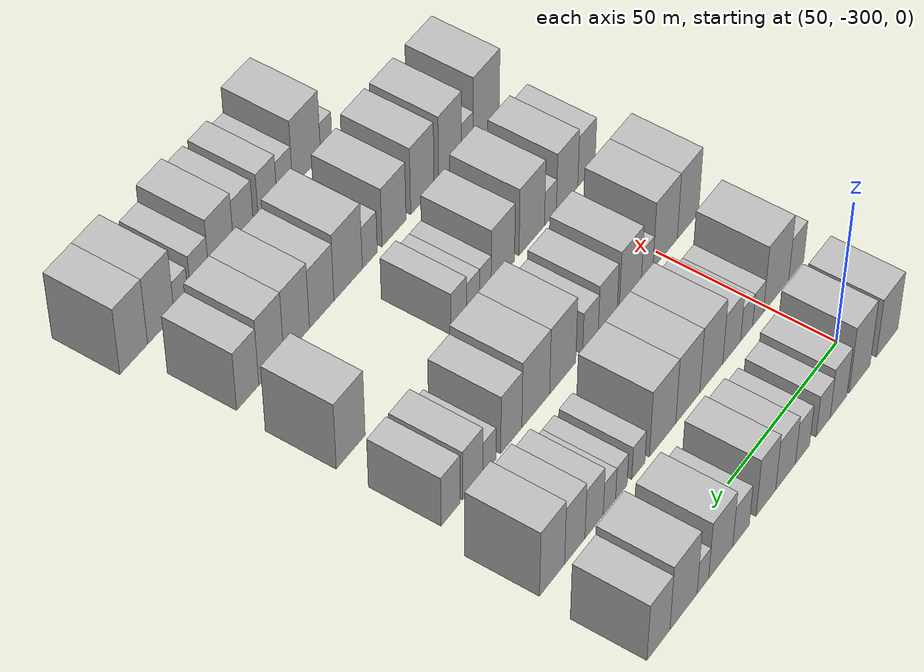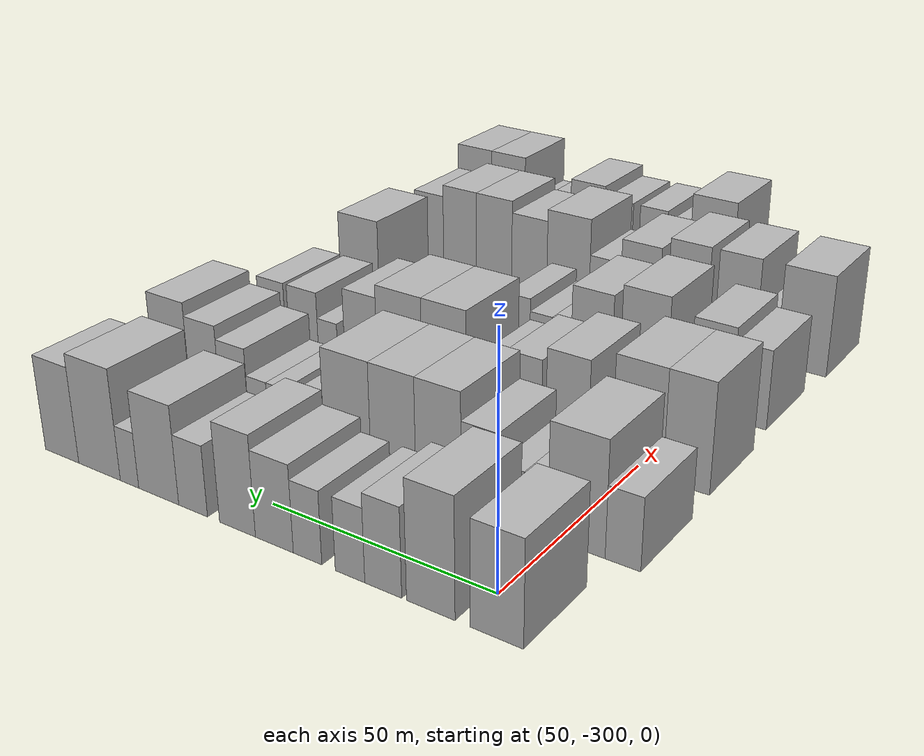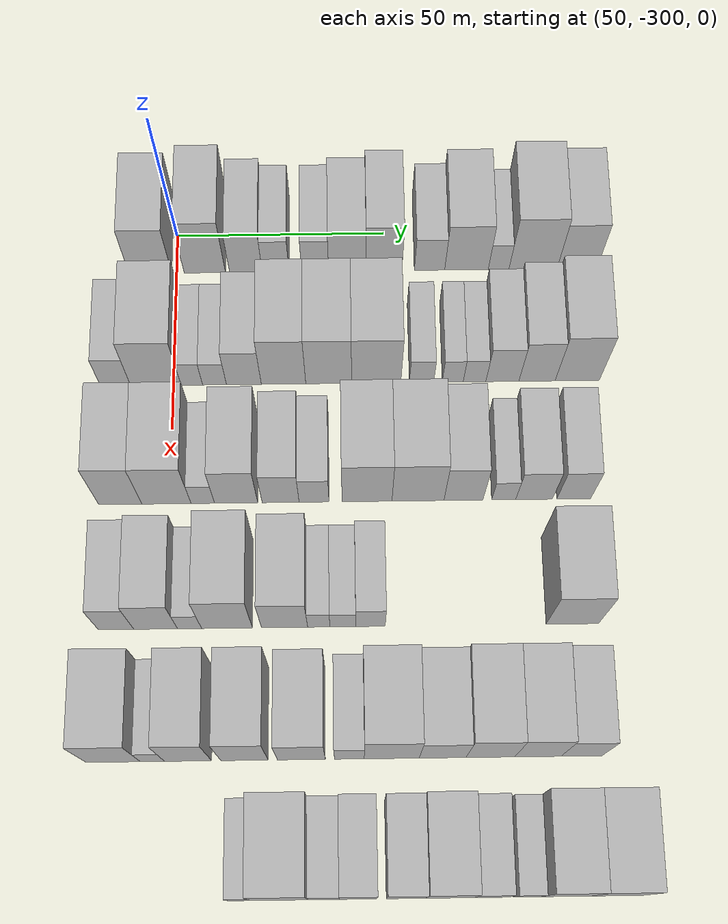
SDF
<sdf version="1.6">
 <world name="default">
  <model name="building_24">
   <static>1</static>
   <pose>50.0000 -306.2270 0 0.000000 0.000000 0.000000</pose>
   <link name="link">
    <pose>0 0 10.50 0 0 0</pose>
    <collision name="collision"><geometry><box><size>20.0000 10.2788 21.0000</size></box></geometry></collision>
    <visual name="visual">
     <cast_shadows>0</cast_shadows>
     <geometry><box><size>20.0000 10.2788 21.0000</size></box></geometry>
     <material>
      <script>
       <uri>model://HANNAS_wall/materials/scripts</uri>
       <uri>model://HANNAS_wall/materials/textures</uri>
       <name>vrc/HANNAS_wall</name>
      </script>
     </material>
    </visual>
   </link>
  </model>
  <model name="building_25">
   <static>1</static>
   <pose>50.0000 -293.1392 0 0.000000 0.000000 0.000000</pose>
   <link name="link">
    <pose>0 0 12.00 0 0 0</pose>
    <collision name="collision"><geometry><box><size>20.0000 9.8967 24.0000</size></box></geometry></collision>
    <visual name="visual">
     <cast_shadows>0</cast_shadows>
     <geometry><box><size>20.0000 9.8967 24.0000</size></box></geometry>
     <material>
      <script>
       <uri>model://HANNAS_wall/materials/scripts</uri>
       <uri>model://HANNAS_wall/materials/textures</uri>
       <name>vrc/HANNAS_wall</name>
      </script>
     </material>
    </visual>
   </link>
  </model>
  <model name="building_26">
   <static>1</static>
   <pose>50.0000 -283.2731 0 0.000000 0.000000 0.000000</pose>
   <link name="link">
    <pose>0 0 9.00 0 0 0</pose>
    <collision name="collision"><geometry><box><size>20.0000 7.8355 18.0000</size></box></geometry></collision>
    <visual name="visual">
     <cast_shadows>0</cast_shadows>
     <geometry><box><size>20.0000 7.8355 18.0000</size></box></geometry>
     <material>
      <script>
       <uri>model://HANNAS_wall/materials/scripts</uri>
       <uri>model://HANNAS_wall/materials/textures</uri>
       <name>vrc/HANNAS_wall</name>
      </script>
     </material>
    </visual>
   </link>
  </model>
  <model name="building_27">
   <static>1</static>
   <pose>50.0000 -276.1281 0 0.000000 0.000000 0.000000</pose>
   <link name="link">
    <pose>0 0 7.50 0 0 0</pose>
    <collision name="collision"><geometry><box><size>20.0000 6.4543 15.0000</size></box></geometry></collision>
    <visual name="visual">
     <cast_shadows>0</cast_shadows>
     <geometry><box><size>20.0000 6.4543 15.0000</size></box></geometry>
     <material>
      <script>
       <uri>model://HANNAS_wall/materials/scripts</uri>
       <uri>model://HANNAS_wall/materials/textures</uri>
       <name>vrc/HANNAS_wall</name>
      </script>
     </material>
    </visual>
   </link>
  </model>
  <model name="building_28">
   <static>1</static>
   <pose>50.0000 -266.6582 0 0.000000 0.000000 0.000000</pose>
   <link name="link">
    <pose>0 0 7.50 0 0 0</pose>
    <collision name="collision"><geometry><box><size>20.0000 6.4856 15.0000</size></box></geometry></collision>
    <visual name="visual">
     <cast_shadows>0</cast_shadows>
     <geometry><box><size>20.0000 6.4856 15.0000</size></box></geometry>
     <material>
      <script>
       <uri>model://HANNAS_wall/materials/scripts</uri>
       <uri>model://HANNAS_wall/materials/textures</uri>
       <name>vrc/HANNAS_wall</name>
      </script>
     </material>
    </visual>
   </link>
  </model>
  <model name="building_29">
   <static>1</static>
   <pose>50.0000 -258.9765 0 0.000000 0.000000 0.000000</pose>
   <link name="link">
    <pose>0 0 9.00 0 0 0</pose>
    <collision name="collision"><geometry><box><size>20.0000 8.8778 18.0000</size></box></geometry></collision>
    <visual name="visual">
     <cast_shadows>0</cast_shadows>
     <geometry><box><size>20.0000 8.8778 18.0000</size></box></geometry>
     <material>
      <script>
       <uri>model://HANNAS_wall/materials/scripts</uri>
       <uri>model://HANNAS_wall/materials/textures</uri>
       <name>vrc/HANNAS_wall</name>
      </script>
     </material>
    </visual>
   </link>
  </model>
  <model name="building_30">
   <static>1</static>
   <pose>50.0000 -250.1749 0 0.000000 0.000000 0.000000</pose>
   <link name="link">
    <pose>0 0 10.50 0 0 0</pose>
    <collision name="collision"><geometry><box><size>20.0000 8.7254 21.0000</size></box></geometry></collision>
    <visual name="visual">
     <cast_shadows>0</cast_shadows>
     <geometry><box><size>20.0000 8.7254 21.0000</size></box></geometry>
     <material>
      <script>
       <uri>model://HANNAS_wall/materials/scripts</uri>
       <uri>model://HANNAS_wall/materials/textures</uri>
       <name>vrc/HANNAS_wall</name>
      </script>
     </material>
    </visual>
   </link>
  </model>
  <model name="building_31">
   <static>1</static>
   <pose>50.0000 -239.1682 0 0.000000 0.000000 0.000000</pose>
   <link name="link">
    <pose>0 0 7.50 0 0 0</pose>
    <collision name="collision"><geometry><box><size>20.0000 7.2879 15.0000</size></box></geometry></collision>
    <visual name="visual">
     <cast_shadows>0</cast_shadows>
     <geometry><box><size>20.0000 7.2879 15.0000</size></box></geometry>
     <material>
      <script>
       <uri>model://HANNAS_wall/materials/scripts</uri>
       <uri>model://HANNAS_wall/materials/textures</uri>
       <name>vrc/HANNAS_wall</name>
      </script>
     </material>
    </visual>
   </link>
  </model>
  <model name="building_32">
   <static>1</static>
   <pose>50.0000 -230.2769 0 0.000000 0.000000 0.000000</pose>
   <link name="link">
    <pose>0 0 10.50 0 0 0</pose>
    <collision name="collision"><geometry><box><size>20.0000 10.4948 21.0000</size></box></geometry></collision>
    <visual name="visual">
     <cast_shadows>0</cast_shadows>
     <geometry><box><size>20.0000 10.4948 21.0000</size></box></geometry>
     <material>
      <script>
       <uri>model://HANNAS_wall/materials/scripts</uri>
       <uri>model://HANNAS_wall/materials/textures</uri>
       <name>vrc/HANNAS_wall</name>
      </script>
     </material>
    </visual>
   </link>
  </model>
  <model name="building_33">
   <static>1</static>
   <pose>50.0000 -222.5440 0 0.000000 0.000000 0.000000</pose>
   <link name="link">
    <pose>0 0 6.00 0 0 0</pose>
    <collision name="collision"><geometry><box><size>20.0000 4.9711 12.0000</size></box></geometry></collision>
    <visual name="visual">
     <cast_shadows>0</cast_shadows>
     <geometry><box><size>20.0000 4.9711 12.0000</size></box></geometry>
     <material>
      <script>
       <uri>model://HANNAS_wall/materials/scripts</uri>
       <uri>model://HANNAS_wall/materials/textures</uri>
       <name>vrc/HANNAS_wall</name>
      </script>
     </material>
    </visual>
   </link>
  </model>
  <model name="building_34">
   <static>1</static>
   <pose>50.0000 -214.2739 0 0.000000 0.000000 0.000000</pose>
   <link name="link">
    <pose>0 0 12.00 0 0 0</pose>
    <collision name="collision"><geometry><box><size>20.0000 11.5692 24.0000</size></box></geometry></collision>
    <visual name="visual">
     <cast_shadows>0</cast_shadows>
     <geometry><box><size>20.0000 11.5692 24.0000</size></box></geometry>
     <material>
      <script>
       <uri>model://HANNAS_wall/materials/scripts</uri>
       <uri>model://HANNAS_wall/materials/textures</uri>
       <name>vrc/HANNAS_wall</name>
      </script>
     </material>
    </visual>
   </link>
  </model>
  <model name="building_35">
   <static>1</static>
   <pose>50.0000 -203.6890 0 0.000000 0.000000 0.000000</pose>
   <link name="link">
    <pose>0 0 10.50 0 0 0</pose>
    <collision name="collision"><geometry><box><size>20.0000 9.6006 21.0000</size></box></geometry></collision>
    <visual name="visual">
     <cast_shadows>0</cast_shadows>
     <geometry><box><size>20.0000 9.6006 21.0000</size></box></geometry>
     <material>
      <script>
       <uri>model://HANNAS_wall/materials/scripts</uri>
       <uri>model://HANNAS_wall/materials/textures</uri>
       <name>vrc/HANNAS_wall</name>
      </script>
     </material>
    </visual>
   </link>
  </model>
  <model name="building_130">
   <static>1</static>
   <pose>79.0000 -313.4329 0 0.000000 0.000000 0.000000</pose>
   <link name="link">
    <pose>0 0 7.50 0 0 0</pose>
    <collision name="collision"><geometry><box><size>20.0000 7.0495 15.0000</size></box></geometry></collision>
    <visual name="visual">
     <cast_shadows>0</cast_shadows>
     <geometry><box><size>20.0000 7.0495 15.0000</size></box></geometry>
     <material>
      <script>
       <uri>model://HANNAS_wall/materials/scripts</uri>
       <uri>model://HANNAS_wall/materials/textures</uri>
       <name>vrc/HANNAS_wall</name>
      </script>
     </material>
    </visual>
   </link>
  </model>
  <model name="building_131">
   <static>1</static>
   <pose>79.0000 -304.0091 0 0.000000 0.000000 0.000000</pose>
   <link name="link">
    <pose>0 0 12.00 0 0 0</pose>
    <collision name="collision"><geometry><box><size>20.0000 11.7979 24.0000</size></box></geometry></collision>
    <visual name="visual">
     <cast_shadows>0</cast_shadows>
     <geometry><box><size>20.0000 11.7979 24.0000</size></box></geometry>
     <material>
      <script>
       <uri>model://HANNAS_wall/materials/scripts</uri>
       <uri>model://HANNAS_wall/materials/textures</uri>
       <name>vrc/HANNAS_wall</name>
      </script>
     </material>
    </visual>
   </link>
  </model>
  <model name="building_132">
   <static>1</static>
   <pose>79.0000 -295.5944 0 0.000000 0.000000 0.000000</pose>
   <link name="link">
    <pose>0 0 6.00 0 0 0</pose>
    <collision name="collision"><geometry><box><size>20.0000 5.0317 12.0000</size></box></geometry></collision>
    <visual name="visual">
     <cast_shadows>0</cast_shadows>
     <geometry><box><size>20.0000 5.0317 12.0000</size></box></geometry>
     <material>
      <script>
       <uri>model://HANNAS_wall/materials/scripts</uri>
       <uri>model://HANNAS_wall/materials/textures</uri>
       <name>vrc/HANNAS_wall</name>
      </script>
     </material>
    </visual>
   </link>
  </model>
  <model name="building_133">
   <static>1</static>
   <pose>79.0000 -290.2913 0 0.000000 0.000000 0.000000</pose>
   <link name="link">
    <pose>0 0 6.00 0 0 0</pose>
    <collision name="collision"><geometry><box><size>20.0000 5.5745 12.0000</size></box></geometry></collision>
    <visual name="visual">
     <cast_shadows>0</cast_shadows>
     <geometry><box><size>20.0000 5.5745 12.0000</size></box></geometry>
     <material>
      <script>
       <uri>model://HANNAS_wall/materials/scripts</uri>
       <uri>model://HANNAS_wall/materials/textures</uri>
       <name>vrc/HANNAS_wall</name>
      </script>
     </material>
    </visual>
   </link>
  </model>
  <model name="building_134">
   <static>1</static>
   <pose>79.0000 -283.4273 0 0.000000 0.000000 0.000000</pose>
   <link name="link">
    <pose>0 0 9.00 0 0 0</pose>
    <collision name="collision"><geometry><box><size>20.0000 8.1535 18.0000</size></box></geometry></collision>
    <visual name="visual">
     <cast_shadows>0</cast_shadows>
     <geometry><box><size>20.0000 8.1535 18.0000</size></box></geometry>
     <material>
      <script>
       <uri>model://HANNAS_wall/materials/scripts</uri>
       <uri>model://HANNAS_wall/materials/textures</uri>
       <name>vrc/HANNAS_wall</name>
      </script>
     </material>
    </visual>
   </link>
  </model>
  <model name="building_135">
   <static>1</static>
   <pose>79.0000 -274.1528 0 0.000000 0.000000 0.000000</pose>
   <link name="link">
    <pose>0 0 12.00 0 0 0</pose>
    <collision name="collision"><geometry><box><size>20.0000 10.3955 24.0000</size></box></geometry></collision>
    <visual name="visual">
     <cast_shadows>0</cast_shadows>
     <geometry><box><size>20.0000 10.3955 24.0000</size></box></geometry>
     <material>
      <script>
       <uri>model://HANNAS_wall/materials/scripts</uri>
       <uri>model://HANNAS_wall/materials/textures</uri>
       <name>vrc/HANNAS_wall</name>
      </script>
     </material>
    </visual>
   </link>
  </model>
  <model name="building_136">
   <static>1</static>
   <pose>79.0000 -263.6063 0 0.000000 0.000000 0.000000</pose>
   <link name="link">
    <pose>0 0 12.00 0 0 0</pose>
    <collision name="collision"><geometry><box><size>20.0000 10.6974 24.0000</size></box></geometry></collision>
    <visual name="visual">
     <cast_shadows>0</cast_shadows>
     <geometry><box><size>20.0000 10.6974 24.0000</size></box></geometry>
     <material>
      <script>
       <uri>model://HANNAS_wall/materials/scripts</uri>
       <uri>model://HANNAS_wall/materials/textures</uri>
       <name>vrc/HANNAS_wall</name>
      </script>
     </material>
    </visual>
   </link>
  </model>
  <model name="building_137">
   <static>1</static>
   <pose>79.0000 -252.4896 0 0.000000 0.000000 0.000000</pose>
   <link name="link">
    <pose>0 0 12.00 0 0 0</pose>
    <collision name="collision"><geometry><box><size>20.0000 11.5361 24.0000</size></box></geometry></collision>
    <visual name="visual">
     <cast_shadows>0</cast_shadows>
     <geometry><box><size>20.0000 11.5361 24.0000</size></box></geometry>
     <material>
      <script>
       <uri>model://HANNAS_wall/materials/scripts</uri>
       <uri>model://HANNAS_wall/materials/textures</uri>
       <name>vrc/HANNAS_wall</name>
      </script>
     </material>
    </visual>
   </link>
  </model>
  <model name="building_138">
   <static>1</static>
   <pose>79.0000 -241.8718 0 0.000000 0.000000 0.000000</pose>
   <link name="link">
    <pose>0 0 6.00 0 0 0</pose>
    <collision name="collision"><geometry><box><size>20.0000 5.6994 12.0000</size></box></geometry></collision>
    <visual name="visual">
     <cast_shadows>0</cast_shadows>
     <geometry><box><size>20.0000 5.6994 12.0000</size></box></geometry>
     <material>
      <script>
       <uri>model://HANNAS_wall/materials/scripts</uri>
       <uri>model://HANNAS_wall/materials/textures</uri>
       <name>vrc/HANNAS_wall</name>
      </script>
     </material>
    </visual>
   </link>
  </model>
  <model name="building_139">
   <static>1</static>
   <pose>79.0000 -234.5597 0 0.000000 0.000000 0.000000</pose>
   <link name="link">
    <pose>0 0 6.00 0 0 0</pose>
    <collision name="collision"><geometry><box><size>20.0000 4.9248 12.0000</size></box></geometry></collision>
    <visual name="visual">
     <cast_shadows>0</cast_shadows>
     <geometry><box><size>20.0000 4.9248 12.0000</size></box></geometry>
     <material>
      <script>
       <uri>model://HANNAS_wall/materials/scripts</uri>
       <uri>model://HANNAS_wall/materials/textures</uri>
       <name>vrc/HANNAS_wall</name>
      </script>
     </material>
    </visual>
   </link>
  </model>
  <model name="building_140">
   <static>1</static>
   <pose>79.0000 -229.4518 0 0.000000 0.000000 0.000000</pose>
   <link name="link">
    <pose>0 0 6.00 0 0 0</pose>
    <collision name="collision"><geometry><box><size>20.0000 5.2909 12.0000</size></box></geometry></collision>
    <visual name="visual">
     <cast_shadows>0</cast_shadows>
     <geometry><box><size>20.0000 5.2909 12.0000</size></box></geometry>
     <material>
      <script>
       <uri>model://HANNAS_wall/materials/scripts</uri>
       <uri>model://HANNAS_wall/materials/textures</uri>
       <name>vrc/HANNAS_wall</name>
      </script>
     </material>
    </visual>
   </link>
  </model>
  <model name="building_141">
   <static>1</static>
   <pose>79.0000 -222.9372 0 0.000000 0.000000 0.000000</pose>
   <link name="link">
    <pose>0 0 9.00 0 0 0</pose>
    <collision name="collision"><geometry><box><size>20.0000 7.7384 18.0000</size></box></geometry></collision>
    <visual name="visual">
     <cast_shadows>0</cast_shadows>
     <geometry><box><size>20.0000 7.7384 18.0000</size></box></geometry>
     <material>
      <script>
       <uri>model://HANNAS_wall/materials/scripts</uri>
       <uri>model://HANNAS_wall/materials/textures</uri>
       <name>vrc/HANNAS_wall</name>
      </script>
     </material>
    </visual>
   </link>
  </model>
  <model name="building_142">
   <static>1</static>
   <pose>79.0000 -214.8280 0 0.000000 0.000000 0.000000</pose>
   <link name="link">
    <pose>0 0 10.50 0 0 0</pose>
    <collision name="collision"><geometry><box><size>20.0000 8.4799 21.0000</size></box></geometry></collision>
    <visual name="visual">
     <cast_shadows>0</cast_shadows>
     <geometry><box><size>20.0000 8.4799 21.0000</size></box></geometry>
     <material>
      <script>
       <uri>model://HANNAS_wall/materials/scripts</uri>
       <uri>model://HANNAS_wall/materials/textures</uri>
       <name>vrc/HANNAS_wall</name>
      </script>
     </material>
    </visual>
   </link>
  </model>
  <model name="building_143">
   <static>1</static>
   <pose>79.0000 -205.3970 0 0.000000 0.000000 0.000000</pose>
   <link name="link">
    <pose>0 0 12.00 0 0 0</pose>
    <collision name="collision"><geometry><box><size>20.0000 10.3822 24.0000</size></box></geometry></collision>
    <visual name="visual">
     <cast_shadows>0</cast_shadows>
     <geometry><box><size>20.0000 10.3822 24.0000</size></box></geometry>
     <material>
      <script>
       <uri>model://HANNAS_wall/materials/scripts</uri>
       <uri>model://HANNAS_wall/materials/textures</uri>
       <name>vrc/HANNAS_wall</name>
      </script>
     </material>
    </visual>
   </link>
  </model>
  <model name="building_247">
   <static>1</static>
   <pose>108.0000 -311.2081 0 0.000000 0.000000 0.000000</pose>
   <link name="link">
    <pose>0 0 12.00 0 0 0</pose>
    <collision name="collision"><geometry><box><size>20.0000 9.8269 24.0000</size></box></geometry></collision>
    <visual name="visual">
     <cast_shadows>0</cast_shadows>
     <geometry><box><size>20.0000 9.8269 24.0000</size></box></geometry>
     <material>
      <script>
       <uri>model://HANNAS_wall/materials/scripts</uri>
       <uri>model://HANNAS_wall/materials/textures</uri>
       <name>vrc/HANNAS_wall</name>
      </script>
     </material>
    </visual>
   </link>
  </model>
  <model name="building_248">
   <static>1</static>
   <pose>108.0000 -300.7055 0 0.000000 0.000000 0.000000</pose>
   <link name="link">
    <pose>0 0 12.00 0 0 0</pose>
    <collision name="collision"><geometry><box><size>20.0000 11.1784 24.0000</size></box></geometry></collision>
    <visual name="visual">
     <cast_shadows>0</cast_shadows>
     <geometry><box><size>20.0000 11.1784 24.0000</size></box></geometry>
     <material>
      <script>
       <uri>model://HANNAS_wall/materials/scripts</uri>
       <uri>model://HANNAS_wall/materials/textures</uri>
       <name>vrc/HANNAS_wall</name>
      </script>
     </material>
    </visual>
   </link>
  </model>
  <model name="building_249">
   <static>1</static>
   <pose>108.0000 -292.4473 0 0.000000 0.000000 0.000000</pose>
   <link name="link">
    <pose>0 0 6.00 0 0 0</pose>
    <collision name="collision"><geometry><box><size>20.0000 5.3379 12.0000</size></box></geometry></collision>
    <visual name="visual">
     <cast_shadows>0</cast_shadows>
     <geometry><box><size>20.0000 5.3379 12.0000</size></box></geometry>
     <material>
      <script>
       <uri>model://HANNAS_wall/materials/scripts</uri>
       <uri>model://HANNAS_wall/materials/textures</uri>
       <name>vrc/HANNAS_wall</name>
      </script>
     </material>
    </visual>
   </link>
  </model>
  <model name="building_250">
   <static>1</static>
   <pose>108.0000 -284.8587 0 0.000000 0.000000 0.000000</pose>
   <link name="link">
    <pose>0 0 10.50 0 0 0</pose>
    <collision name="collision"><geometry><box><size>20.0000 9.8393 21.0000</size></box></geometry></collision>
    <visual name="visual">
     <cast_shadows>0</cast_shadows>
     <geometry><box><size>20.0000 9.8393 21.0000</size></box></geometry>
     <material>
      <script>
       <uri>model://HANNAS_wall/materials/scripts</uri>
       <uri>model://HANNAS_wall/materials/textures</uri>
       <name>vrc/HANNAS_wall</name>
      </script>
     </material>
    </visual>
   </link>
  </model>
  <model name="building_251">
   <static>1</static>
   <pose>108.0000 -274.7360 0 0.000000 0.000000 0.000000</pose>
   <link name="link">
    <pose>0 0 9.00 0 0 0</pose>
    <collision name="collision"><geometry><box><size>20.0000 8.4062 18.0000</size></box></geometry></collision>
    <visual name="visual">
     <cast_shadows>0</cast_shadows>
     <geometry><box><size>20.0000 8.4062 18.0000</size></box></geometry>
     <material>
      <script>
       <uri>model://HANNAS_wall/materials/scripts</uri>
       <uri>model://HANNAS_wall/materials/textures</uri>
       <name>vrc/HANNAS_wall</name>
      </script>
     </material>
    </visual>
   </link>
  </model>
  <model name="building_252">
   <static>1</static>
   <pose>108.0000 -267.1228 0 0.000000 0.000000 0.000000</pose>
   <link name="link">
    <pose>0 0 7.50 0 0 0</pose>
    <collision name="collision"><geometry><box><size>20.0000 6.8200 15.0000</size></box></geometry></collision>
    <visual name="visual">
     <cast_shadows>0</cast_shadows>
     <geometry><box><size>20.0000 6.8200 15.0000</size></box></geometry>
     <material>
      <script>
       <uri>model://HANNAS_wall/materials/scripts</uri>
       <uri>model://HANNAS_wall/materials/textures</uri>
       <name>vrc/HANNAS_wall</name>
      </script>
     </material>
    </visual>
   </link>
  </model>
  <model name="building_253">
   <static>1</static>
   <pose>108.0000 -255.0556 0 0.000000 0.000000 0.000000</pose>
   <link name="link">
    <pose>0 0 12.00 0 0 0</pose>
    <collision name="collision"><geometry><box><size>20.0000 11.3146 24.0000</size></box></geometry></collision>
    <visual name="visual">
     <cast_shadows>0</cast_shadows>
     <geometry><box><size>20.0000 11.3146 24.0000</size></box></geometry>
     <material>
      <script>
       <uri>model://HANNAS_wall/materials/scripts</uri>
       <uri>model://HANNAS_wall/materials/textures</uri>
       <name>vrc/HANNAS_wall</name>
      </script>
     </material>
    </visual>
   </link>
  </model>
  <model name="building_254">
   <static>1</static>
   <pose>108.0000 -243.4718 0 0.000000 0.000000 0.000000</pose>
   <link name="link">
    <pose>0 0 12.00 0 0 0</pose>
    <collision name="collision"><geometry><box><size>20.0000 11.8531 24.0000</size></box></geometry></collision>
    <visual name="visual">
     <cast_shadows>0</cast_shadows>
     <geometry><box><size>20.0000 11.8531 24.0000</size></box></geometry>
     <material>
      <script>
       <uri>model://HANNAS_wall/materials/scripts</uri>
       <uri>model://HANNAS_wall/materials/textures</uri>
       <name>vrc/HANNAS_wall</name>
      </script>
     </material>
    </visual>
   </link>
  </model>
  <model name="building_255">
   <static>1</static>
   <pose>108.0000 -233.1002 0 0.000000 0.000000 0.000000</pose>
   <link name="link">
    <pose>0 0 10.50 0 0 0</pose>
    <collision name="collision"><geometry><box><size>20.0000 8.8901 21.0000</size></box></geometry></collision>
    <visual name="visual">
     <cast_shadows>0</cast_shadows>
     <geometry><box><size>20.0000 8.8901 21.0000</size></box></geometry>
     <material>
      <script>
       <uri>model://HANNAS_wall/materials/scripts</uri>
       <uri>model://HANNAS_wall/materials/textures</uri>
       <name>vrc/HANNAS_wall</name>
      </script>
     </material>
    </visual>
   </link>
  </model>
  <model name="building_256">
   <static>1</static>
   <pose>108.0000 -223.9243 0 0.000000 0.000000 0.000000</pose>
   <link name="link">
    <pose>0 0 6.00 0 0 0</pose>
    <collision name="collision"><geometry><box><size>20.0000 5.4616 12.0000</size></box></geometry></collision>
    <visual name="visual">
     <cast_shadows>0</cast_shadows>
     <geometry><box><size>20.0000 5.4616 12.0000</size></box></geometry>
     <material>
      <script>
       <uri>model://HANNAS_wall/materials/scripts</uri>
       <uri>model://HANNAS_wall/materials/textures</uri>
       <name>vrc/HANNAS_wall</name>
      </script>
     </material>
    </visual>
   </link>
  </model>
  <model name="building_257">
   <static>1</static>
   <pose>108.0000 -217.0015 0 0.000000 0.000000 0.000000</pose>
   <link name="link">
    <pose>0 0 9.00 0 0 0</pose>
    <collision name="collision"><geometry><box><size>20.0000 8.3840 18.0000</size></box></geometry></collision>
    <visual name="visual">
     <cast_shadows>0</cast_shadows>
     <geometry><box><size>20.0000 8.3840 18.0000</size></box></geometry>
     <material>
      <script>
       <uri>model://HANNAS_wall/materials/scripts</uri>
       <uri>model://HANNAS_wall/materials/textures</uri>
       <name>vrc/HANNAS_wall</name>
      </script>
     </material>
    </visual>
   </link>
  </model>
  <model name="building_258">
   <static>1</static>
   <pose>108.0000 -207.9461 0 0.000000 0.000000 0.000000</pose>
   <link name="link">
    <pose>0 0 9.00 0 0 0</pose>
    <collision name="collision"><geometry><box><size>20.0000 7.7268 18.0000</size></box></geometry></collision>
    <visual name="visual">
     <cast_shadows>0</cast_shadows>
     <geometry><box><size>20.0000 7.7268 18.0000</size></box></geometry>
     <material>
      <script>
       <uri>model://HANNAS_wall/materials/scripts</uri>
       <uri>model://HANNAS_wall/materials/textures</uri>
       <name>vrc/HANNAS_wall</name>
      </script>
     </material>
    </visual>
   </link>
  </model>
  <model name="building_366">
   <static>1</static>
   <pose>137.0000 -311.0346 0 0.000000 0.000000 0.000000</pose>
   <link name="link">
    <pose>0 0 9.00 0 0 0</pose>
    <collision name="collision"><geometry><box><size>20.0000 7.8547 18.0000</size></box></geometry></collision>
    <visual name="visual">
     <cast_shadows>0</cast_shadows>
     <geometry><box><size>20.0000 7.8547 18.0000</size></box></geometry>
     <material>
      <script>
       <uri>model://HANNAS_wall/materials/scripts</uri>
       <uri>model://HANNAS_wall/materials/textures</uri>
       <name>vrc/HANNAS_wall</name>
      </script>
     </material>
    </visual>
   </link>
  </model>
  <model name="building_367">
   <static>1</static>
   <pose>137.0000 -302.2786 0 0.000000 0.000000 0.000000</pose>
   <link name="link">
    <pose>0 0 10.50 0 0 0</pose>
    <collision name="collision"><geometry><box><size>20.0000 9.6572 21.0000</size></box></geometry></collision>
    <visual name="visual">
     <cast_shadows>0</cast_shadows>
     <geometry><box><size>20.0000 9.6572 21.0000</size></box></geometry>
     <material>
      <script>
       <uri>model://HANNAS_wall/materials/scripts</uri>
       <uri>model://HANNAS_wall/materials/textures</uri>
       <name>vrc/HANNAS_wall</name>
      </script>
     </material>
    </visual>
   </link>
  </model>
  <model name="building_368">
   <static>1</static>
   <pose>137.0000 -294.7863 0 0.000000 0.000000 0.000000</pose>
   <link name="link">
    <pose>0 0 6.00 0 0 0</pose>
    <collision name="collision"><geometry><box><size>20.0000 5.3275 12.0000</size></box></geometry></collision>
    <visual name="visual">
     <cast_shadows>0</cast_shadows>
     <geometry><box><size>20.0000 5.3275 12.0000</size></box></geometry>
     <material>
      <script>
       <uri>model://HANNAS_wall/materials/scripts</uri>
       <uri>model://HANNAS_wall/materials/textures</uri>
       <name>vrc/HANNAS_wall</name>
      </script>
     </material>
    </visual>
   </link>
  </model>
  <model name="building_369">
   <static>1</static>
   <pose>137.0000 -286.4923 0 0.000000 0.000000 0.000000</pose>
   <link name="link">
    <pose>0 0 12.00 0 0 0</pose>
    <collision name="collision"><geometry><box><size>20.0000 11.2603 24.0000</size></box></geometry></collision>
    <visual name="visual">
     <cast_shadows>0</cast_shadows>
     <geometry><box><size>20.0000 11.2603 24.0000</size></box></geometry>
     <material>
      <script>
       <uri>model://HANNAS_wall/materials/scripts</uri>
       <uri>model://HANNAS_wall/materials/textures</uri>
       <name>vrc/HANNAS_wall</name>
      </script>
     </material>
    </visual>
   </link>
  </model>
  <model name="building_370">
   <static>1</static>
   <pose>137.0000 -273.7545 0 0.000000 0.000000 0.000000</pose>
   <link name="link">
    <pose>0 0 10.50 0 0 0</pose>
    <collision name="collision"><geometry><box><size>20.0000 10.2153 21.0000</size></box></geometry></collision>
    <visual name="visual">
     <cast_shadows>0</cast_shadows>
     <geometry><box><size>20.0000 10.2153 21.0000</size></box></geometry>
     <material>
      <script>
       <uri>model://HANNAS_wall/materials/scripts</uri>
       <uri>model://HANNAS_wall/materials/textures</uri>
       <name>vrc/HANNAS_wall</name>
      </script>
     </material>
    </visual>
   </link>
  </model>
  <model name="building_371">
   <static>1</static>
   <pose>137.0000 -266.1699 0 0.000000 0.000000 0.000000</pose>
   <link name="link">
    <pose>0 0 6.00 0 0 0</pose>
    <collision name="collision"><geometry><box><size>20.0000 4.9541 12.0000</size></box></geometry></collision>
    <visual name="visual">
     <cast_shadows>0</cast_shadows>
     <geometry><box><size>20.0000 4.9541 12.0000</size></box></geometry>
     <material>
      <script>
       <uri>model://HANNAS_wall/materials/scripts</uri>
       <uri>model://HANNAS_wall/materials/textures</uri>
       <name>vrc/HANNAS_wall</name>
      </script>
     </material>
    </visual>
   </link>
  </model>
  <model name="building_372">
   <static>1</static>
   <pose>137.0000 -260.8594 0 0.000000 0.000000 0.000000</pose>
   <link name="link">
    <pose>0 0 6.00 0 0 0</pose>
    <collision name="collision"><geometry><box><size>20.0000 5.6669 12.0000</size></box></geometry></collision>
    <visual name="visual">
     <cast_shadows>0</cast_shadows>
     <geometry><box><size>20.0000 5.6669 12.0000</size></box></geometry>
     <material>
      <script>
       <uri>model://HANNAS_wall/materials/scripts</uri>
       <uri>model://HANNAS_wall/materials/textures</uri>
       <name>vrc/HANNAS_wall</name>
      </script>
     </material>
    </visual>
   </link>
  </model>
  <model name="building_373">
   <static>1</static>
   <pose>137.0000 -254.7603 0 0.000000 0.000000 0.000000</pose>
   <link name="link">
    <pose>0 0 7.50 0 0 0</pose>
    <collision name="collision"><geometry><box><size>20.0000 6.5312 15.0000</size></box></geometry></collision>
    <visual name="visual">
     <cast_shadows>0</cast_shadows>
     <geometry><box><size>20.0000 6.5312 15.0000</size></box></geometry>
     <material>
      <script>
       <uri>model://HANNAS_wall/materials/scripts</uri>
       <uri>model://HANNAS_wall/materials/textures</uri>
       <name>vrc/HANNAS_wall</name>
      </script>
     </material>
    </visual>
   </link>
  </model>
  <model name="building_374">
   <static>1</static>
   <pose>137.0000 -209.9708 0 0.000000 0.000000 0.000000</pose>
   <link name="link">
    <pose>0 0 12.00 0 0 0</pose>
    <collision name="collision"><geometry><box><size>20.0000 11.6826 24.0000</size></box></geometry></collision>
    <visual name="visual">
     <cast_shadows>0</cast_shadows>
     <geometry><box><size>20.0000 11.6826 24.0000</size></box></geometry>
     <material>
      <script>
       <uri>model://HANNAS_wall/materials/scripts</uri>
       <uri>model://HANNAS_wall/materials/textures</uri>
       <name>vrc/HANNAS_wall</name>
      </script>
     </material>
    </visual>
   </link>
  </model>
  <model name="building_477">
   <static>1</static>
   <pose>166.0000 -310.5585 0 0.000000 0.000000 0.000000</pose>
   <link name="link">
    <pose>0 0 12.00 0 0 0</pose>
    <collision name="collision"><geometry><box><size>20.0000 11.6664 24.0000</size></box></geometry></collision>
    <visual name="visual">
     <cast_shadows>0</cast_shadows>
     <geometry><box><size>20.0000 11.6664 24.0000</size></box></geometry>
     <material>
      <script>
       <uri>model://HANNAS_wall/materials/scripts</uri>
       <uri>model://HANNAS_wall/materials/textures</uri>
       <name>vrc/HANNAS_wall</name>
      </script>
     </material>
    </visual>
   </link>
  </model>
  <model name="building_478">
   <static>1</static>
   <pose>166.0000 -302.1101 0 0.000000 0.000000 0.000000</pose>
   <link name="link">
    <pose>0 0 6.00 0 0 0</pose>
    <collision name="collision"><geometry><box><size>20.0000 5.2305 12.0000</size></box></geometry></collision>
    <visual name="visual">
     <cast_shadows>0</cast_shadows>
     <geometry><box><size>20.0000 5.2305 12.0000</size></box></geometry>
     <material>
      <script>
       <uri>model://HANNAS_wall/materials/scripts</uri>
       <uri>model://HANNAS_wall/materials/textures</uri>
       <name>vrc/HANNAS_wall</name>
      </script>
     </material>
    </visual>
   </link>
  </model>
  <model name="building_479">
   <static>1</static>
   <pose>166.0000 -294.4338 0 0.000000 0.000000 0.000000</pose>
   <link name="link">
    <pose>0 0 12.00 0 0 0</pose>
    <collision name="collision"><geometry><box><size>20.0000 10.1221 24.0000</size></box></geometry></collision>
    <visual name="visual">
     <cast_shadows>0</cast_shadows>
     <geometry><box><size>20.0000 10.1221 24.0000</size></box></geometry>
     <material>
      <script>
       <uri>model://HANNAS_wall/materials/scripts</uri>
       <uri>model://HANNAS_wall/materials/textures</uri>
       <name>vrc/HANNAS_wall</name>
      </script>
     </material>
    </visual>
   </link>
  </model>
  <model name="building_480">
   <static>1</static>
   <pose>166.0000 -282.2893 0 0.000000 0.000000 0.000000</pose>
   <link name="link">
    <pose>0 0 12.00 0 0 0</pose>
    <collision name="collision"><geometry><box><size>20.0000 10.1667 24.0000</size></box></geometry></collision>
    <visual name="visual">
     <cast_shadows>0</cast_shadows>
     <geometry><box><size>20.0000 10.1667 24.0000</size></box></geometry>
     <material>
      <script>
       <uri>model://HANNAS_wall/materials/scripts</uri>
       <uri>model://HANNAS_wall/materials/textures</uri>
       <name>vrc/HANNAS_wall</name>
      </script>
     </material>
    </visual>
   </link>
  </model>
  <model name="building_481">
   <static>1</static>
   <pose>166.0000 -270.0612 0 0.000000 0.000000 0.000000</pose>
   <link name="link">
    <pose>0 0 10.50 0 0 0</pose>
    <collision name="collision"><geometry><box><size>20.0000 10.2895 21.0000</size></box></geometry></collision>
    <visual name="visual">
     <cast_shadows>0</cast_shadows>
     <geometry><box><size>20.0000 10.2895 21.0000</size></box></geometry>
     <material>
      <script>
       <uri>model://HANNAS_wall/materials/scripts</uri>
       <uri>model://HANNAS_wall/materials/textures</uri>
       <name>vrc/HANNAS_wall</name>
      </script>
     </material>
    </visual>
   </link>
  </model>
  <model name="building_482">
   <static>1</static>
   <pose>166.0000 -259.7375 0 0.000000 0.000000 0.000000</pose>
   <link name="link">
    <pose>0 0 7.50 0 0 0</pose>
    <collision name="collision"><geometry><box><size>20.0000 6.3578 15.0000</size></box></geometry></collision>
    <visual name="visual">
     <cast_shadows>0</cast_shadows>
     <geometry><box><size>20.0000 6.3578 15.0000</size></box></geometry>
     <material>
      <script>
       <uri>model://HANNAS_wall/materials/scripts</uri>
       <uri>model://HANNAS_wall/materials/textures</uri>
       <name>vrc/HANNAS_wall</name>
      </script>
     </material>
    </visual>
   </link>
  </model>
  <model name="building_483">
   <static>1</static>
   <pose>166.0000 -250.6286 0 0.000000 0.000000 0.000000</pose>
   <link name="link">
    <pose>0 0 12.00 0 0 0</pose>
    <collision name="collision"><geometry><box><size>20.0000 11.8601 24.0000</size></box></geometry></collision>
    <visual name="visual">
     <cast_shadows>0</cast_shadows>
     <geometry><box><size>20.0000 11.8601 24.0000</size></box></geometry>
     <material>
      <script>
       <uri>model://HANNAS_wall/materials/scripts</uri>
       <uri>model://HANNAS_wall/materials/textures</uri>
       <name>vrc/HANNAS_wall</name>
      </script>
     </material>
    </visual>
   </link>
  </model>
  <model name="building_484">
   <static>1</static>
   <pose>166.0000 -239.6521 0 0.000000 0.000000 0.000000</pose>
   <link name="link">
    <pose>0 0 10.50 0 0 0</pose>
    <collision name="collision"><geometry><box><size>20.0000 10.0929 21.0000</size></box></geometry></collision>
    <visual name="visual">
     <cast_shadows>0</cast_shadows>
     <geometry><box><size>20.0000 10.0929 21.0000</size></box></geometry>
     <material>
      <script>
       <uri>model://HANNAS_wall/materials/scripts</uri>
       <uri>model://HANNAS_wall/materials/textures</uri>
       <name>vrc/HANNAS_wall</name>
      </script>
     </material>
    </visual>
   </link>
  </model>
  <model name="building_485">
   <static>1</static>
   <pose>166.0000 -229.3677 0 0.000000 0.000000 0.000000</pose>
   <link name="link">
    <pose>0 0 12.00 0 0 0</pose>
    <collision name="collision"><geometry><box><size>20.0000 10.4759 24.0000</size></box></geometry></collision>
    <visual name="visual">
     <cast_shadows>0</cast_shadows>
     <geometry><box><size>20.0000 10.4759 24.0000</size></box></geometry>
     <material>
      <script>
       <uri>model://HANNAS_wall/materials/scripts</uri>
       <uri>model://HANNAS_wall/materials/textures</uri>
       <name>vrc/HANNAS_wall</name>
      </script>
     </material>
    </visual>
   </link>
  </model>
  <model name="building_486">
   <static>1</static>
   <pose>166.0000 -219.1164 0 0.000000 0.000000 0.000000</pose>
   <link name="link">
    <pose>0 0 12.00 0 0 0</pose>
    <collision name="collision"><geometry><box><size>20.0000 10.0269 24.0000</size></box></geometry></collision>
    <visual name="visual">
     <cast_shadows>0</cast_shadows>
     <geometry><box><size>20.0000 10.0269 24.0000</size></box></geometry>
     <material>
      <script>
       <uri>model://HANNAS_wall/materials/scripts</uri>
       <uri>model://HANNAS_wall/materials/textures</uri>
       <name>vrc/HANNAS_wall</name>
      </script>
     </material>
    </visual>
   </link>
  </model>
  <model name="building_487">
   <static>1</static>
   <pose>166.0000 -209.6868 0 0.000000 0.000000 0.000000</pose>
   <link name="link">
    <pose>0 0 10.50 0 0 0</pose>
    <collision name="collision"><geometry><box><size>20.0000 8.8323 21.0000</size></box></geometry></collision>
    <visual name="visual">
     <cast_shadows>0</cast_shadows>
     <geometry><box><size>20.0000 8.8323 21.0000</size></box></geometry>
     <material>
      <script>
       <uri>model://HANNAS_wall/materials/scripts</uri>
       <uri>model://HANNAS_wall/materials/textures</uri>
       <name>vrc/HANNAS_wall</name>
      </script>
     </material>
    </visual>
   </link>
  </model>
  <model name="building_595">
   <static>1</static>
   <pose>195.0000 -282.9273 0 0.000000 0.000000 0.000000</pose>
   <link name="link">
    <pose>0 0 6.00 0 0 0</pose>
    <collision name="collision"><geometry><box><size>20.0000 4.9449 12.0000</size></box></geometry></collision>
    <visual name="visual">
     <cast_shadows>0</cast_shadows>
     <geometry><box><size>20.0000 4.9449 12.0000</size></box></geometry>
     <material>
      <script>
       <uri>model://HANNAS_wall/materials/scripts</uri>
       <uri>model://HANNAS_wall/materials/textures</uri>
       <name>vrc/HANNAS_wall</name>
      </script>
     </material>
    </visual>
   </link>
  </model>
  <model name="building_596">
   <static>1</static>
   <pose>195.0000 -274.4986 0 0.000000 0.000000 0.000000</pose>
   <link name="link">
    <pose>0 0 12.00 0 0 0</pose>
    <collision name="collision"><geometry><box><size>20.0000 11.9125 24.0000</size></box></geometry></collision>
    <visual name="visual">
     <cast_shadows>0</cast_shadows>
     <geometry><box><size>20.0000 11.9125 24.0000</size></box></geometry>
     <material>
      <script>
       <uri>model://HANNAS_wall/materials/scripts</uri>
       <uri>model://HANNAS_wall/materials/textures</uri>
       <name>vrc/HANNAS_wall</name>
      </script>
     </material>
    </visual>
   </link>
  </model>
  <model name="building_597">
   <static>1</static>
   <pose>195.0000 -265.3167 0 0.000000 0.000000 0.000000</pose>
   <link name="link">
    <pose>0 0 7.50 0 0 0</pose>
    <collision name="collision"><geometry><box><size>20.0000 6.4513 15.0000</size></box></geometry></collision>
    <visual name="visual">
     <cast_shadows>0</cast_shadows>
     <geometry><box><size>20.0000 6.4513 15.0000</size></box></geometry>
     <material>
      <script>
       <uri>model://HANNAS_wall/materials/scripts</uri>
       <uri>model://HANNAS_wall/materials/textures</uri>
       <name>vrc/HANNAS_wall</name>
      </script>
     </material>
    </visual>
   </link>
  </model>
  <model name="building_598">
   <static>1</static>
   <pose>195.0000 -258.2203 0 0.000000 0.000000 0.000000</pose>
   <link name="link">
    <pose>0 0 9.00 0 0 0</pose>
    <collision name="collision"><geometry><box><size>20.0000 7.7416 18.0000</size></box></geometry></collision>
    <visual name="visual">
     <cast_shadows>0</cast_shadows>
     <geometry><box><size>20.0000 7.7416 18.0000</size></box></geometry>
     <material>
      <script>
       <uri>model://HANNAS_wall/materials/scripts</uri>
       <uri>model://HANNAS_wall/materials/textures</uri>
       <name>vrc/HANNAS_wall</name>
      </script>
     </material>
    </visual>
   </link>
  </model>
  <model name="building_599">
   <static>1</static>
   <pose>195.0000 -248.2851 0 0.000000 0.000000 0.000000</pose>
   <link name="link">
    <pose>0 0 9.00 0 0 0</pose>
    <collision name="collision"><geometry><box><size>20.0000 8.1288 18.0000</size></box></geometry></collision>
    <visual name="visual">
     <cast_shadows>0</cast_shadows>
     <geometry><box><size>20.0000 8.1288 18.0000</size></box></geometry>
     <material>
      <script>
       <uri>model://HANNAS_wall/materials/scripts</uri>
       <uri>model://HANNAS_wall/materials/textures</uri>
       <name>vrc/HANNAS_wall</name>
      </script>
     </material>
    </visual>
   </link>
  </model>
  <model name="building_600">
   <static>1</static>
   <pose>195.0000 -239.1758 0 0.000000 0.000000 0.000000</pose>
   <link name="link">
    <pose>0 0 10.50 0 0 0</pose>
    <collision name="collision"><geometry><box><size>20.0000 10.0897 21.0000</size></box></geometry></collision>
    <visual name="visual">
     <cast_shadows>0</cast_shadows>
     <geometry><box><size>20.0000 10.0897 21.0000</size></box></geometry>
     <material>
      <script>
       <uri>model://HANNAS_wall/materials/scripts</uri>
       <uri>model://HANNAS_wall/materials/textures</uri>
       <name>vrc/HANNAS_wall</name>
      </script>
     </material>
    </visual>
   </link>
  </model>
  <model name="building_601">
   <static>1</static>
   <pose>195.0000 -230.4619 0 0.000000 0.000000 0.000000</pose>
   <link name="link">
    <pose>0 0 7.50 0 0 0</pose>
    <collision name="collision"><geometry><box><size>20.0000 7.3382 15.0000</size></box></geometry></collision>
    <visual name="visual">
     <cast_shadows>0</cast_shadows>
     <geometry><box><size>20.0000 7.3382 15.0000</size></box></geometry>
     <material>
      <script>
       <uri>model://HANNAS_wall/materials/scripts</uri>
       <uri>model://HANNAS_wall/materials/textures</uri>
       <name>vrc/HANNAS_wall</name>
      </script>
     </material>
    </visual>
   </link>
  </model>
  <model name="building_602">
   <static>1</static>
   <pose>195.0000 -222.9381 0 0.000000 0.000000 0.000000</pose>
   <link name="link">
    <pose>0 0 6.00 0 0 0</pose>
    <collision name="collision"><geometry><box><size>20.0000 5.7095 12.0000</size></box></geometry></collision>
    <visual name="visual">
     <cast_shadows>0</cast_shadows>
     <geometry><box><size>20.0000 5.7095 12.0000</size></box></geometry>
     <material>
      <script>
       <uri>model://HANNAS_wall/materials/scripts</uri>
       <uri>model://HANNAS_wall/materials/textures</uri>
       <name>vrc/HANNAS_wall</name>
      </script>
     </material>
    </visual>
   </link>
  </model>
  <model name="building_603">
   <static>1</static>
   <pose>195.0000 -214.8295 0 0.000000 0.000000 0.000000</pose>
   <link name="link">
    <pose>0 0 12.00 0 0 0</pose>
    <collision name="collision"><geometry><box><size>20.0000 10.5078 24.0000</size></box></geometry></collision>
    <visual name="visual">
     <cast_shadows>0</cast_shadows>
     <geometry><box><size>20.0000 10.5078 24.0000</size></box></geometry>
     <material>
      <script>
       <uri>model://HANNAS_wall/materials/scripts</uri>
       <uri>model://HANNAS_wall/materials/textures</uri>
       <name>vrc/HANNAS_wall</name>
      </script>
     </material>
    </visual>
   </link>
  </model>
  <model name="building_604">
   <static>1</static>
   <pose>195.0000 -204.1599 0 0.000000 0.000000 0.000000</pose>
   <link name="link">
    <pose>0 0 12.00 0 0 0</pose>
    <collision name="collision"><geometry><box><size>20.0000 10.8314 24.0000</size></box></geometry></collision>
    <visual name="visual">
     <cast_shadows>0</cast_shadows>
     <geometry><box><size>20.0000 10.8314 24.0000</size></box></geometry>
     <material>
      <script>
       <uri>model://HANNAS_wall/materials/scripts</uri>
       <uri>model://HANNAS_wall/materials/textures</uri>
       <name>vrc/HANNAS_wall</name>
      </script>
     </material>
    </visual>
   </link>
  </model>
 </world>
</sdf>
